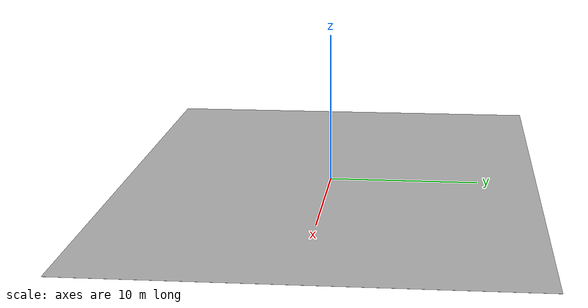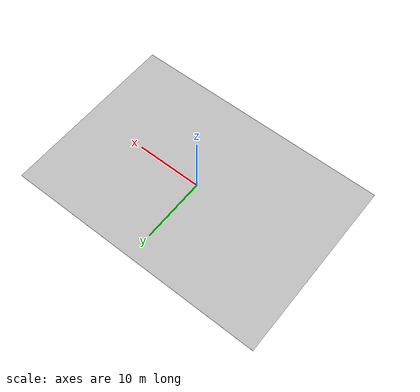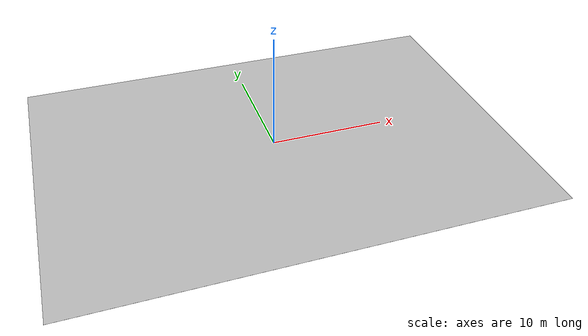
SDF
<?xml version="1.0" ?>
<sdf version="1.5">
  <model name="floor_tiles">
    <static>true</static>
    <link name="link">
       <visual name='visual_floor_tiles_0'>
        <pose>0 0 0 0 0 0</pose>
        <geometry>
          <box>
            <size>40 28 0.005</size>
          </box>
        </geometry>
        <material>
          <script>
            <uri>model://floor_tiles/materials/scripts</uri>
            <uri>model://floor_tiles/materials/textures</uri>
            <name>floor_tiles</name>
          </script>
        </material>
      </visual>
    </link>
  </model>
</sdf>
